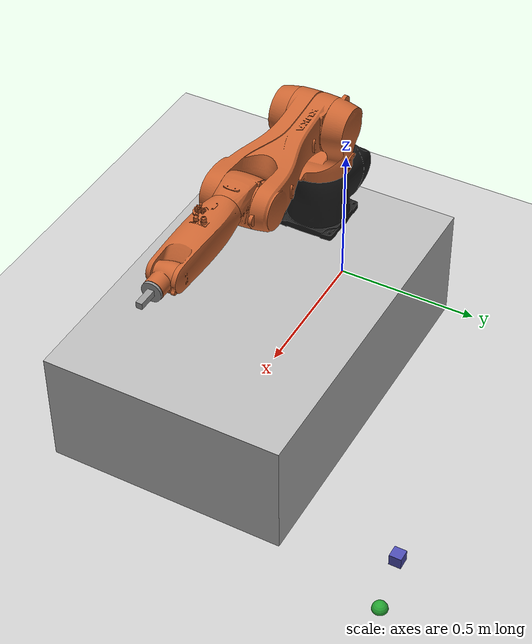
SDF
<sdf version="1.6">
 <world name="default">
  <model name="ground_plane">
   <static>1</static>
   <link name="link">
    <collision name="collision">
     <geometry><plane><normal>0 0 1</normal><size>100 100</size></plane></geometry>
     <surface>
      <contact><collide_bitmask>65535</collide_bitmask></contact>
      <friction><ode><mu>100</mu><mu2>50</mu2></ode></friction>
     </surface>
    </collision>
    <visual name="visual">
     <cast_shadows>0</cast_shadows>
     <geometry><plane><normal>0 0 1</normal><size>100 100</size></plane></geometry>
     <material>
      <script><uri>file://media/materials/scripts/gazebo.material</uri><name>Gazebo/Grey</name></script>
     </material>
    </visual>
   </link>
  </model>
  <light name="sun" type="directional">
   <pose>0 0 10 0 -0 0</pose>
   <diffuse>0.8 0.8 0.8 1</diffuse>
   <specular>0.2 0.2 0.2 1</specular>
   <attenuation>
    <range>1000</range>
    <constant>0.9</constant>
    <linear>0.01</linear>
    <quadratic>0.001</quadratic>
   </attenuation>
   <direction>-0.5 0.1 -0.9</direction>
  </light>
  <physics name="default_physics" default="0" type="ode">
   <max_step_size>0.001</max_step_size>
   <real_time_factor>1</real_time_factor>
   <real_time_update_rate>1000</real_time_update_rate>
  </physics>
  <gravity>0 0 -9.8</gravity>
  <magnetic_field>6e-06 2.3e-05 -4.2e-05</magnetic_field>
  <atmosphere type="adiabatic"/>
  <scene><ambient>0.4 0.4 0.4 1</ambient><background>0.7 0.7 0.7 1</background><shadows>1</shadows></scene>
  <audio><device>default</device></audio>
  <spherical_coordinates>
   <surface_model>EARTH_WGS84</surface_model>
   <latitude_deg>0</latitude_deg>
   <longitude_deg>0</longitude_deg>
   <elevation>0</elevation>
   <heading_deg>0</heading_deg>
  </spherical_coordinates>
  <model name="kuka_kr6r900sixx">
   <link name="table">
    <pose>0.6 0 0.2 0 -0 0</pose>
    <inertial>
     <pose>-0.092308 0 0.046154 0 -0 0</pose>
     <mass>130</mass>
     <inertia>
      <ixx>3.68708</ixx>
      <ixy>0</ixy>
      <ixz>1.84615</ixz>
      <iyy>14.4574</iyy>
      <iyz>0</iyz>
      <izz>13.5563</izz>
     </inertia>
    </inertial>
    <collision name="table_collision"><geometry><box><size>1.2 0.8 0.4</size></box></geometry></collision>
    <collision name="table_fixed_joint_lump__base_link_collision_1">
     <pose>-0.4 0 0.2 0 -0 0</pose>
     <geometry>
      <mesh>
       <scale>1 1 1</scale>
       <uri>/home/tomas/catkin_ws/src/ROS_KUKA_env/kuka_experimental/kuka_kr6_support/meshes/kr6_agilus/collision/base_link.stl</uri>
      </mesh>
     </geometry>
    </collision>
    <visual name="table_visual"><geometry><box><size>1.2 0.8 0.4</size></box></geometry></visual>
    <visual name="table_fixed_joint_lump__base_link_visual_1">
     <pose>-0.4 0 0.2 0 -0 0</pose>
     <geometry>
      <mesh>
       <scale>1 1 1</scale>
       <uri>/home/tomas/catkin_ws/src/ROS_KUKA_env/kuka_experimental/kuka_kr6_support/meshes/kr6_agilus/visual/base_link.dae</uri>
      </mesh>
     </geometry>
    </visual>
   </link>
   <joint name="joint_table" type="fixed"><child>table</child><parent>world</parent></joint>
   <link name="link_1">
    <pose>0.2 0 0.8 0 -0 0</pose>
    <inertial>
     <mass>12.5</mass>
     <inertia><ixx>0.141</ixx><ixy>0</ixy><ixz>0</ixz><iyy>0.121</iyy><iyz>0</iyz><izz>0.121</izz></inertia>
    </inertial>
    <collision name="link_1_collision">
     <geometry>
      <mesh>
       <scale>1 1 1</scale>
       <uri>/home/tomas/catkin_ws/src/ROS_KUKA_env/kuka_experimental/kuka_kr6_support/meshes/kr6_agilus/collision/link_1.stl</uri>
      </mesh>
     </geometry>
    </collision>
    <visual name="link_1_visual">
     <geometry>
      <mesh>
       <scale>1 1 1</scale>
       <uri>/home/tomas/catkin_ws/src/ROS_KUKA_env/kuka_experimental/kuka_kr6_support/meshes/kr6_agilus/visual/link_1.dae</uri>
      </mesh>
     </geometry>
    </visual>
   </link>
   <joint name="joint_a1" type="revolute">
    <child>link_1</child>
    <parent>table</parent>
    <axis>
     <xyz>0 0 -1</xyz>
     <limit><lower>-1.0472</lower><upper>1.0472</upper><effort>100</effort><velocity>6.28319</velocity></limit>
     <dynamics>
      <damping>0.7</damping>
      <friction>100</friction>
      <spring_reference>0</spring_reference>
      <spring_stiffness>0</spring_stiffness>
     </dynamics>
     <use_parent_model_frame>1</use_parent_model_frame>
    </axis>
   </joint>
   <link name="link_2">
    <pose>0.225 0 0.8 0 -0 0</pose>
    <inertial>
     <mass>5</mass>
     <inertia><ixx>0.072</ixx><ixy>0</ixy><ixz>0</ixz><iyy>0.357</iyy><iyz>0</iyz><izz>0.345</izz></inertia>
    </inertial>
    <collision name="link_2_collision">
     <geometry>
      <mesh>
       <scale>1 1 1</scale>
       <uri>/home/tomas/catkin_ws/src/ROS_KUKA_env/kuka_experimental/kuka_kr6_support/meshes/kr6r900sixx/collision/link_2.stl</uri>
      </mesh>
     </geometry>
    </collision>
    <visual name="link_2_visual">
     <geometry>
      <mesh>
       <scale>1 1 1</scale>
       <uri>/home/tomas/catkin_ws/src/ROS_KUKA_env/kuka_experimental/kuka_kr6_support/meshes/kr6r900sixx/visual/link_2.dae</uri>
      </mesh>
     </geometry>
    </visual>
   </link>
   <joint name="joint_a2" type="revolute">
    <child>link_2</child>
    <parent>link_1</parent>
    <axis>
     <xyz>0 1 0</xyz>
     <limit><lower>-1.5708</lower><upper>0.174533</upper><effort>100</effort><velocity>5.23599</velocity></limit>
     <dynamics>
      <damping>0.7</damping>
      <friction>100</friction>
      <spring_reference>0</spring_reference>
      <spring_stiffness>0</spring_stiffness>
     </dynamics>
     <use_parent_model_frame>1</use_parent_model_frame>
    </axis>
   </joint>
   <link name="link_3">
    <pose>0.68 0 0.8 0 -0 0</pose>
    <inertial>
     <mass>5</mass>
     <inertia><ixx>0.011</ixx><ixy>0</ixy><ixz>0</ixz><iyy>0.017</iyy><iyz>0</iyz><izz>0.018</izz></inertia>
    </inertial>
    <collision name="link_3_collision">
     <geometry>
      <mesh>
       <scale>1 1 1</scale>
       <uri>/home/tomas/catkin_ws/src/ROS_KUKA_env/kuka_experimental/kuka_kr6_support/meshes/kr6_agilus/collision/link_3.stl</uri>
      </mesh>
     </geometry>
    </collision>
    <visual name="link_3_visual">
     <geometry>
      <mesh>
       <scale>1 1 1</scale>
       <uri>/home/tomas/catkin_ws/src/ROS_KUKA_env/kuka_experimental/kuka_kr6_support/meshes/kr6_agilus/visual/link_3.dae</uri>
      </mesh>
     </geometry>
    </visual>
   </link>
   <joint name="joint_a3" type="revolute">
    <child>link_3</child>
    <parent>link_2</parent>
    <axis>
     <xyz>0 1 0</xyz>
     <limit><lower>0</lower><upper>2.35619</upper><effort>100</effort><velocity>6.28319</velocity></limit>
     <dynamics>
      <damping>0.7</damping>
      <friction>100</friction>
      <spring_reference>0</spring_reference>
      <spring_stiffness>0</spring_stiffness>
     </dynamics>
     <use_parent_model_frame>1</use_parent_model_frame>
    </axis>
   </joint>
   <link name="link_4">
    <pose>0.68 0 0.835 0 -0 0</pose>
    <inertial>
     <mass>5</mass>
     <inertia><ixx>0.01</ixx><ixy>0</ixy><ixz>0</ixz><iyy>0.056</iyy><iyz>0</iyz><izz>0.056</izz></inertia>
    </inertial>
    <collision name="link_4_collision">
     <geometry>
      <mesh>
       <scale>1 1 1</scale>
       <uri>/home/tomas/catkin_ws/src/ROS_KUKA_env/kuka_experimental/kuka_kr6_support/meshes/kr6r900sixx/collision/link_4.stl</uri>
      </mesh>
     </geometry>
    </collision>
    <visual name="link_4_visual">
     <geometry>
      <mesh>
       <scale>1 1 1</scale>
       <uri>/home/tomas/catkin_ws/src/ROS_KUKA_env/kuka_experimental/kuka_kr6_support/meshes/kr6r900sixx/visual/link_4.dae</uri>
      </mesh>
     </geometry>
    </visual>
   </link>
   <joint name="joint_a4" type="revolute">
    <child>link_4</child>
    <parent>link_3</parent>
    <axis>
     <xyz>-1 0 0</xyz>
     <limit><lower>-1.5708</lower><upper>1.5708</upper><effort>100</effort><velocity>6.6497</velocity></limit>
     <dynamics>
      <damping>0.7</damping>
      <friction>100</friction>
      <spring_reference>0</spring_reference>
      <spring_stiffness>0</spring_stiffness>
     </dynamics>
     <use_parent_model_frame>1</use_parent_model_frame>
    </axis>
   </joint>
   <link name="link_5">
    <pose>1.1 0 0.835 0 -0 0</pose>
    <inertial>
     <mass>2</mass>
     <inertia><ixx>0.001</ixx><ixy>0</ixy><ixz>0</ixz><iyy>0.01</iyy><iyz>0</iyz><izz>0.001</izz></inertia>
    </inertial>
    <collision name="link_5_collision">
     <geometry>
      <mesh>
       <scale>1 1 1</scale>
       <uri>/home/tomas/catkin_ws/src/ROS_KUKA_env/kuka_experimental/kuka_kr6_support/meshes/kr6_agilus/collision/link_5.stl</uri>
      </mesh>
     </geometry>
    </collision>
    <visual name="link_5_visual">
     <geometry>
      <mesh>
       <scale>1 1 1</scale>
       <uri>/home/tomas/catkin_ws/src/ROS_KUKA_env/kuka_experimental/kuka_kr6_support/meshes/kr6_agilus/visual/link_5.dae</uri>
      </mesh>
     </geometry>
    </visual>
   </link>
   <joint name="joint_a5" type="revolute">
    <child>link_5</child>
    <parent>link_4</parent>
    <axis>
     <xyz>0 1 0</xyz>
     <limit><lower>-1.5708</lower><upper>1.91986</upper><effort>100</effort><velocity>6.77188</velocity></limit>
     <dynamics>
      <damping>0.7</damping>
      <friction>100</friction>
      <spring_reference>0</spring_reference>
      <spring_stiffness>0</spring_stiffness>
     </dynamics>
     <use_parent_model_frame>1</use_parent_model_frame>
    </axis>
   </joint>
   <link name="link_6">
    <pose>1.18 0 0.835 0 -0 0</pose>
    <inertial>
     <pose>0.003182 0 0 0 -0 0</pose>
     <mass>2.2</mass>
     <inertia>
      <ixx>0.00300002</ixx>
      <ixy>1.43339e-05</ixy>
      <ixz>0</ixz>
      <iyy>0.0302227</iyy>
      <iyz>0</iyz>
      <izz>0.00322273</izz>
     </inertia>
    </inertial>
    <collision name="link_6_collision">
     <geometry>
      <mesh>
       <scale>1 1 1</scale>
       <uri>/home/tomas/catkin_ws/src/ROS_KUKA_env/kuka_experimental/kuka_kr6_support/meshes/kr6_agilus/collision/link_6.stl</uri>
      </mesh>
     </geometry>
    </collision>
    <collision name="link_6_fixed_joint_lump__tool0_collision_1">
     <geometry>
      <mesh>
       <scale>0.001 0.001 0.001</scale>
       <uri>/home/tomas/catkin_ws/src/ROS_KUKA_env/kuka_experimental/kuka_kr6_support/meshes/kr6r900sixx/visual/priruba.stl</uri>
      </mesh>
     </geometry>
    </collision>
    <collision name="link_6_fixed_joint_lump__fingers_collision_2">
     <pose>0.035 0 0 0 -0 3.14</pose>
     <geometry><box><size>0.07 0.02 0.02</size></box></geometry>
    </collision>
    <visual name="link_6_visual">
     <geometry>
      <mesh>
       <scale>1 1 1</scale>
       <uri>/home/tomas/catkin_ws/src/ROS_KUKA_env/kuka_experimental/kuka_kr6_support/meshes/kr6_agilus/visual/link_6.dae</uri>
      </mesh>
     </geometry>
    </visual>
    <visual name="link_6_fixed_joint_lump__tool0_visual_1">
     <geometry>
      <mesh>
       <scale>0.001 0.001 0.001</scale>
       <uri>/home/tomas/catkin_ws/src/ROS_KUKA_env/kuka_experimental/kuka_kr6_support/meshes/kr6r900sixx/visual/priruba.stl</uri>
      </mesh>
     </geometry>
     <material>
      <script><name>Gazebo/Grey</name><uri>file://media/materials/scripts/gazebo.material</uri></script>
     </material>
    </visual>
    <visual name="link_6_fixed_joint_lump__fingers_visual_2">
     <pose>0.035 0 0 0 -0 3.14</pose>
     <geometry><box><size>0.07 0.02 0.02</size></box></geometry>
     <material>
      <script><name>Gazebo/Grey</name><uri>file://media/materials/scripts/gazebo.material</uri></script>
     </material>
    </visual>
   </link>
   <joint name="joint_a6" type="revolute">
    <child>link_6</child>
    <parent>link_5</parent>
    <axis>
     <xyz>-1 0 0</xyz>
     <limit><lower>-3.83972</lower><upper>3.83972</upper><effort>100</effort><velocity>10.7338</velocity></limit>
     <dynamics>
      <damping>0.7</damping>
      <friction>100</friction>
      <spring_reference>0</spring_reference>
      <spring_stiffness>0</spring_stiffness>
     </dynamics>
     <use_parent_model_frame>1</use_parent_model_frame>
    </axis>
   </joint>
   <static>0</static>
   <plugin name="gazebo_ros_control" filename="libgazebo_ros_control.so">
    <robotNamespace>/</robotNamespace>
   </plugin>
  </model>
  <model name="unit_box">
   <link name="link">
    <inertial>
     <mass>1</mass>
     <inertia>
      <ixx>0.166667</ixx>
      <ixy>0</ixy>
      <ixz>0</ixz>
      <iyy>0.166667</iyy>
      <iyz>0</iyz>
      <izz>0.166667</izz>
     </inertia>
    </inertial>
    <visual name="visual">
     <geometry><box><size>0.04 0.04 0.04</size></box></geometry>
     <material>
      <script><name>Gazebo/Grey</name><uri>file://media/materials/scripts/gazebo.material</uri></script>
      <shader type="vertex"><normal_map>__default__</normal_map></shader>
      <ambient>0.3 0.3 0.7 1</ambient>
      <diffuse>0.7 0.7 0.7 1</diffuse>
      <specular>0.01 0.01 0.7 1</specular>
      <emissive>0 0 0 1</emissive>
     </material>
    </visual>
    <collision name="collision">
     <geometry><box><size>0.04 0.04 0.04</size></box></geometry>
     <surface>
      <friction>
       <ode><mu>1</mu><mu2>1</mu2><fdir1>0 0 0</fdir1><slip1>0</slip1><slip2>0</slip2></ode>
       <torsional>
        <coefficient>1</coefficient>
        <patch_radius>0</patch_radius>
        <surface_radius>0</surface_radius>
        <use_patch_radius>1</use_patch_radius>
        <ode><slip>0</slip></ode>
       </torsional>
      </friction>
      <bounce><restitution_coefficient>0</restitution_coefficient><threshold>1e+06</threshold></bounce>
      <contact>
       <collide_without_contact>0</collide_without_contact>
       <collide_without_contact_bitmask>1</collide_without_contact_bitmask>
       <collide_bitmask>1</collide_bitmask>
       <ode>
        <soft_cfm>0</soft_cfm>
        <soft_erp>0.2</soft_erp>
        <kp>1e+13</kp>
        <kd>1</kd>
        <max_vel>0.01</max_vel>
        <min_depth>0</min_depth>
       </ode>
       <bullet>
        <split_impulse>1</split_impulse>
        <split_impulse_penetration_threshold>-0.01</split_impulse_penetration_threshold>
        <soft_cfm>0</soft_cfm>
        <soft_erp>0.2</soft_erp>
        <kp>1e+13</kp>
        <kd>1</kd>
       </bullet>
      </contact>
     </surface>
    </collision>
   </link>
   <static>0</static>
   <plugin name="pushobject_plugin" filename="libpushobject_plugin.so"/>
   <pose>1.08452 0.735173 0.020001 -1.6e-05 -5.3e-05 -5e-06</pose>
  </model>
  <model name="goal">
   <link name="link">
    <inertial>
     <mass>1</mass>
     <inertia><ixx>0.1</ixx><ixy>0</ixy><ixz>0</ixz><iyy>0.1</iyy><iyz>0</iyz><izz>0.1</izz></inertia>
    </inertial>
    <gravity>0</gravity>
    <visual name="visual">
     <geometry><sphere><radius>0.025</radius></sphere></geometry>
     <material>
      <script><name>Gazebo/Green</name><uri>file://media/materials/scripts/gazebo.material</uri></script>
      <shader type="vertex"><normal_map>__default__</normal_map></shader>
      <ambient>0 1 0 1</ambient>
      <diffuse>0 1 0 1</diffuse>
      <specular>0 1 0 1</specular>
      <emissive>0 1 0 1</emissive>
     </material>
    </visual>
   </link>
   <static>0</static>
   <plugin name="goalgazebo_plugin" filename="libgoalgazebo_plugin.so"/>
   <pose>1.26268 0.764758 0 0 -0 0</pose>
  </model>
 </world>
</sdf>
